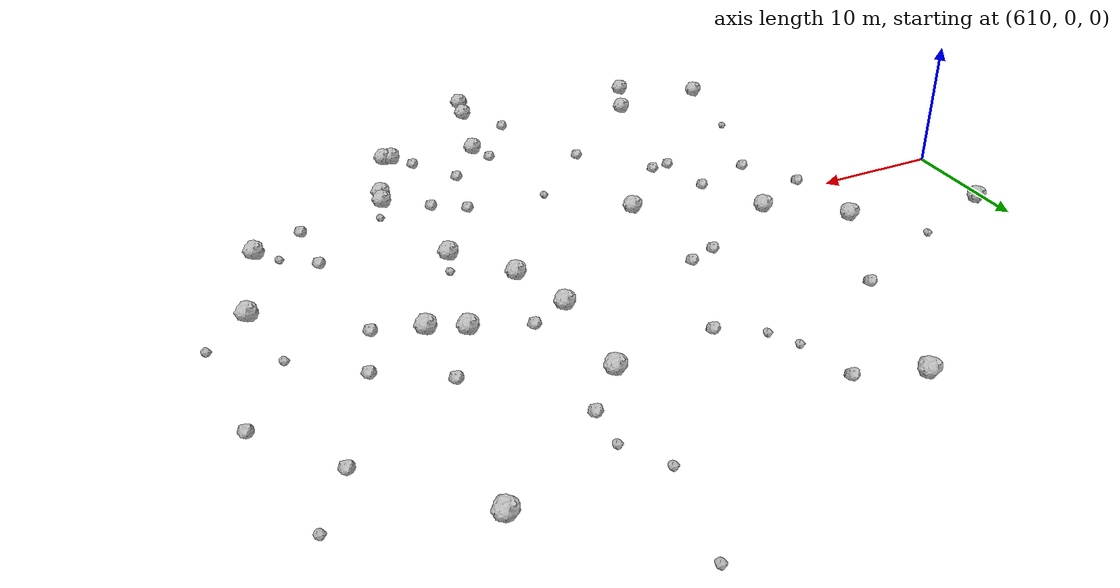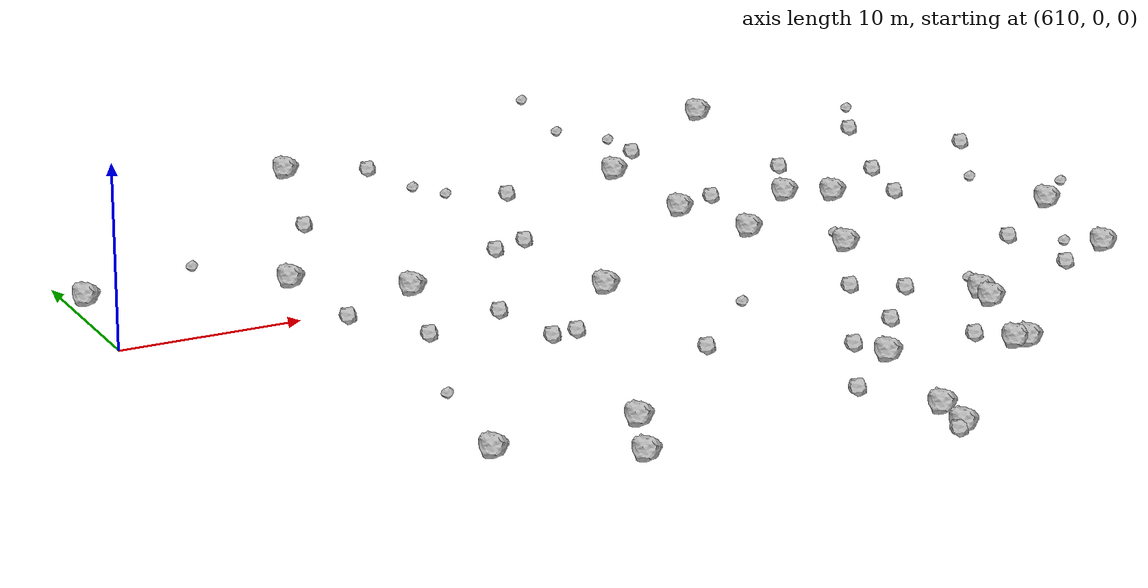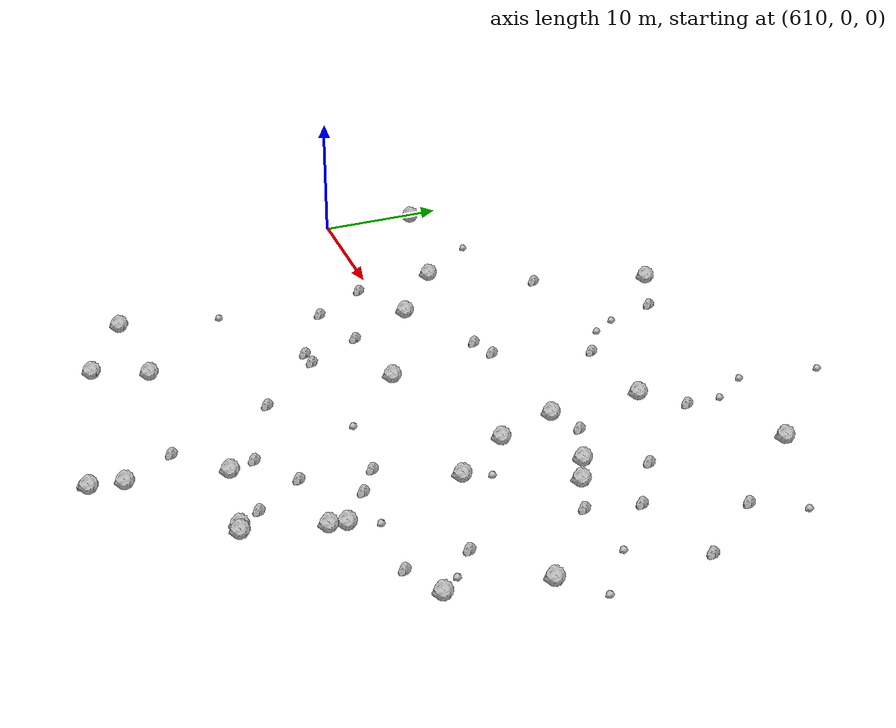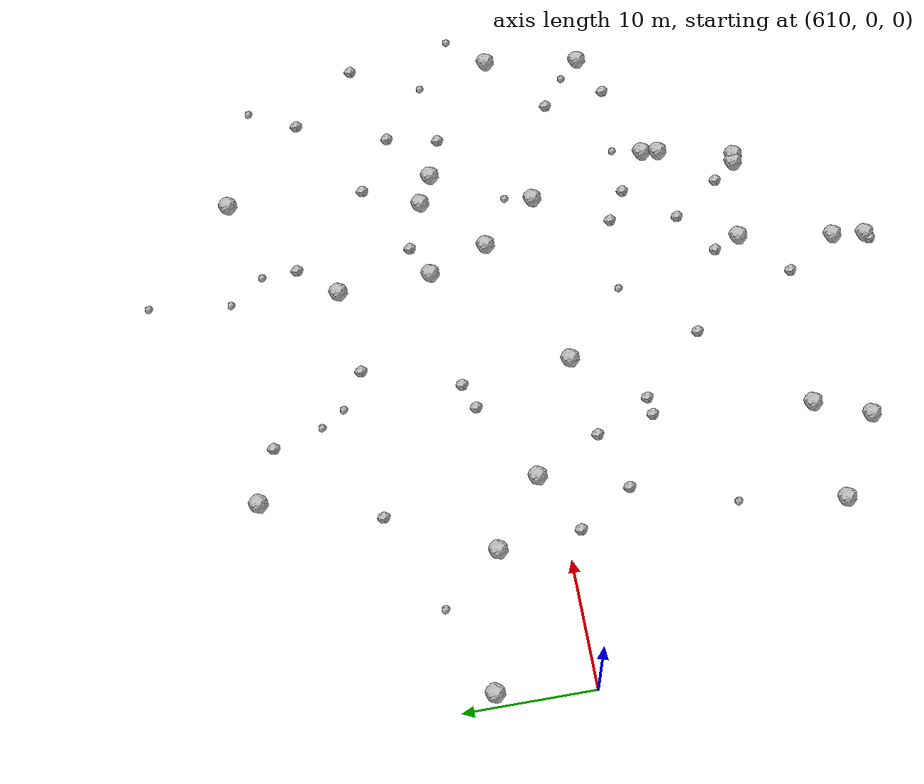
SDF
<sdf version="1.6">
 <world name="default">
  <include><uri>model://sun</uri></include>
  <model name="rock1_16_3">
   <include><uri>model://rock1</uri><pose>611.0188550802909 7.372932741155779 0.5 0 0 0</pose></include>
  </model>
  <model name="rock1_16_4">
   <include><uri>model://rock1</uri><pose>621.104017370537 -21.195809433902095 0.5 0 0 0</pose></include>
  </model>
  <model name="rock1_16_5">
   <include><uri>model://rock1</uri><pose>653.4046185525685 -13.655128765167689 0.5 0 0 0</pose></include>
  </model>
  <model name="rock1_16_6">
   <include><uri>model://rock1</uri><pose>651.3128370229997 -19.4929968290278 0.5 0 0 0</pose></include>
  </model>
  <model name="rock1_16_7">
   <include><uri>model://rock1</uri><pose>663.385555010819 -8.879742776792035 0.5 0 0 0</pose></include>
  </model>
  <model name="rock1_16_8">
   <include><uri>model://rock1</uri><pose>653.5849211186852 -12.35668051779231 0.5 0 0 0</pose></include>
  </model>
  <model name="rock1_16_9">
   <include><uri>model://rock1</uri><pose>645.531607840389 6.421609814988969 0.5 0 0 0</pose></include>
  </model>
  <model name="rock1_16_10">
   <include><uri>model://rock1</uri><pose>636.2062125508951 -3.0254964081259708 0.5 0 0 0</pose></include>
  </model>
  <model name="rock1_16_11">
   <include><uri>model://rock1</uri><pose>644.503779682121 -18.321896980757742 0.5 0 0 0</pose></include>
  </model>
  <model name="rock1_16_12">
   <include><uri>model://rock1</uri><pose>643.2626336028187 -25.74636766724753 0.5 0 0 0</pose></include>
  </model>
  <model name="rock1_16_13">
   <include><uri>model://rock1</uri><pose>627.4756169612667 -24.809736461389292 0.5 0 0 0</pose></include>
  </model>
  <model name="rock1_16_14">
   <include><uri>model://rock1</uri><pose>651.9804200522717 -19.640057466441682 0.5 0 0 0</pose></include>
  </model>
  <model name="rock1_16_15">
   <include><uri>model://rock1</uri><pose>626.9830475911915 1.2705493306880982 0.5 0 0 0</pose></include>
  </model>
  <model name="rock1_16_16">
   <include><uri>model://rock1</uri><pose>629.2030297411137 -20.623864757152518 0.5 0 0 0</pose></include>
  </model>
  <model name="rock1_16_17">
   <include><uri>model://rock1</uri><pose>628.5060619222281 22.225331602950206 0.5 0 0 0</pose></include>
  </model>
  <model name="rock1_16_18">
   <include><uri>model://rock1</uri><pose>654.4358683690555 5.0322587498975935 0.5 0 0 0</pose></include>
  </model>
  <model name="rock1_16_19">
   <include><uri>model://rock1</uri><pose>664.5284700867699 -1.3250262020061996 0.5 0 0 0</pose></include>
  </model>
  <model name="rock1_16_20">
   <include><uri>model://rock1</uri><pose>647.3077736800794 1.6804340712755526 0.5 0 0 0</pose></include>
  </model>
  <model name="rock1_16_21">
   <include><uri>model://rock1</uri><pose>642.9340660403866 -28.310526652170946 0.5 0 0 0</pose></include>
  </model>
  <model name="rock1_16_22">
   <include><uri>model://rock1</uri><pose>650.8589512465257 -2.765142153443886 0.5 0 0 0</pose></include>
  </model>
  <model name="rock1_16_23">
   <include><uri>model://rock1</uri><pose>654.5382118474469 21.469028244517446 0.5 0 0 0</pose></include>
  </model>
  <model name="rock1_16_24">
   <include><uri>model://rock1</uri><pose>652.0151037980455 6.20314245012392 0.5 0 0 0</pose></include>
  </model>
  <model name="rock1_16_25">
   <include><uri>model://rock1</uri><pose>621.7037739124708 5.229853159601156 0.5 0 0 0</pose></include>
  </model>
  <model name="rock1_16_26">
   <include><uri>model://rock1</uri><pose>645.1769837575567 13.824647036544889 0.5 0 0 0</pose></include>
  </model>
  <model name="rock2_16_0">
   <include><uri>model://rock2</uri><pose>640.7180077322662 -21.71708410691246 0.3 0 0 0</pose></include>
  </model>
  <model name="rock2_16_1">
   <include><uri>model://rock2</uri><pose>648.0689587641987 7.661069211828853 0.3 0 0 0</pose></include>
  </model>
  <model name="rock2_16_2">
   <include><uri>model://rock2</uri><pose>643.6122946768128 -16.251191453584028 0.3 0 0 0</pose></include>
  </model>
  <model name="rock2_16_3">
   <include><uri>model://rock2</uri><pose>647.1294761137885 -13.91332496300042 0.3 0 0 0</pose></include>
  </model>
  <model name="rock2_16_4">
   <include><uri>model://rock2</uri><pose>635.5117143081885 5.580281312830458 0.3 0 0 0</pose></include>
  </model>
  <model name="rock2_16_5">
   <include><uri>model://rock2</uri><pose>624.8673864857931 -5.375922072374713 0.3 0 0 0</pose></include>
  </model>
  <model name="rock2_16_6">
   <include><uri>model://rock2</uri><pose>636.7367384423457 -13.272743925505488 0.3 0 0 0</pose></include>
  </model>
  <model name="rock2_16_7">
   <include><uri>model://rock2</uri><pose>632.7868673600792 20.536277108276238 0.3 0 0 0</pose></include>
  </model>
  <model name="rock2_16_8">
   <include><uri>model://rock2</uri><pose>629.5395488479747 -3.8666757343244242 0.3 0 0 0</pose></include>
  </model>
  <model name="rock2_16_9">
   <include><uri>model://rock2</uri><pose>625.7647133386408 13.165615676193532 0.3 0 0 0</pose></include>
  </model>
  <model name="rock2_16_10">
   <include><uri>model://rock2</uri><pose>622.1846274217368 -1.1331488199879622 0.3 0 0 0</pose></include>
  </model>
  <model name="rock2_16_11">
   <include><uri>model://rock2</uri><pose>650.2474909068276 -10.070436198568196 0.3 0 0 0</pose></include>
  </model>
  <model name="rock2_16_12">
   <include><uri>model://rock2</uri><pose>665.6082713877568 9.938365816589538 0.3 0 0 0</pose></include>
  </model>
  <model name="rock2_16_13">
   <include><uri>model://rock2</uri><pose>659.9764481884047 -10.383076476036319 0.3 0 0 0</pose></include>
  </model>
  <model name="rock2_16_14">
   <include><uri>model://rock2</uri><pose>630.4341905169537 -8.342155483607296 0.3 0 0 0</pose></include>
  </model>
  <model name="rock2_16_15">
   <include><uri>model://rock2</uri><pose>657.6669416081883 3.858593836340127 0.3 0 0 0</pose></include>
  </model>
  <model name="rock2_16_16">
   <include><uri>model://rock2</uri><pose>631.881285945331 -8.215493360408253 0.3 0 0 0</pose></include>
  </model>
  <model name="rock2_16_17">
   <include><uri>model://rock2</uri><pose>647.7047747566577 16.76580145585796 0.3 0 0 0</pose></include>
  </model>
  <model name="rock2_16_18">
   <include><uri>model://rock2</uri><pose>659.3944330758537 -5.479491338889698 0.3 0 0 0</pose></include>
  </model>
  <model name="rock2_16_19">
   <include><uri>model://rock2</uri><pose>649.8928757135651 -17.689230618095117 0.3 0 0 0</pose></include>
  </model>
  <model name="rock2_16_20">
   <include><uri>model://rock2</uri><pose>653.9974172898812 10.620297907440076 0.3 0 0 0</pose></include>
  </model>
  <model name="rock2_16_21">
   <include><uri>model://rock2</uri><pose>638.030046094746 13.079439395210827 0.3 0 0 0</pose></include>
  </model>
  <model name="rock2_16_22">
   <include><uri>model://rock2</uri><pose>647.7573588146093 -8.555274285108357 0.3 0 0 0</pose></include>
  </model>
  <model name="rock2_16_23">
   <include><uri>model://rock2</uri><pose>658.5550195991349 7.912385065828914 0.3 0 0 0</pose></include>
  </model>
  <model name="rock2_16_24">
   <include><uri>model://rock2</uri><pose>661.1050552848333 15.054900322897467 0.3 0 0 0</pose></include>
  </model>
  <model name="rock2_16_25">
   <include><uri>model://rock2</uri><pose>642.4413647936616 -28.610010171850753 0.3 0 0 0</pose></include>
  </model>
  <model name="rock2_16_26">
   <include><uri>model://rock2</uri><pose>633.4298898295982 4.838701556020048 0.3 0 0 0</pose></include>
  </model>
  <model name="rock3_16_0">
   <include><uri>model://rock3</uri><pose>661.8376038039507 -7.313476918264655 0.2 0 0 0</pose></include>
  </model>
  <model name="rock3_16_1">
   <include><uri>model://rock3</uri><pose>651.2985312132098 -0.6194774486174524 0.2 0 0 0</pose></include>
  </model>
  <model name="rock3_16_2">
   <include><uri>model://rock3</uri><pose>647.5855718510584 19.546104750537253 0.2 0 0 0</pose></include>
  </model>
  <model name="rock3_16_3">
   <include><uri>model://rock3</uri><pose>617.8545631049608 9.793405476765301 0.2 0 0 0</pose></include>
  </model>
  <model name="rock3_16_4">
   <include><uri>model://rock3</uri><pose>654.1477155043219 -10.08222298792963 0.2 0 0 0</pose></include>
  </model>
  <model name="rock3_16_5">
   <include><uri>model://rock3</uri><pose>645.5779226869487 22.24884158470872 0.2 0 0 0</pose></include>
  </model>
  <model name="rock3_16_6">
   <include><uri>model://rock3</uri><pose>622.2950656901753 -13.21749452727775 0.2 0 0 0</pose></include>
  </model>
  <model name="rock3_16_7">
   <include><uri>model://rock3</uri><pose>662.9373717990551 4.439475043603416 0.2 0 0 0</pose></include>
  </model>
  <model name="rock3_16_8">
   <include><uri>model://rock3</uri><pose>633.8573529198908 16.66148015309625 0.2 0 0 0</pose></include>
  </model>
  <model name="rock3_16_9">
   <include><uri>model://rock3</uri><pose>663.0375098836296 18.76434590285765 0.2 0 0 0</pose></include>
  </model>
  <model name="rock3_16_10">
   <include><uri>model://rock3</uri><pose>667.1554446206314 1.5084928926201577 0.2 0 0 0</pose></include>
  </model>
  <model name="rock3_16_11">
   <include><uri>model://rock3</uri><pose>641.6148191503166 -8.02133671095881 0.2 0 0 0</pose></include>
  </model>
  <model name="rock3_16_12">
   <include><uri>model://rock3</uri><pose>646.3875463499005 28.66017284049824 0.2 0 0 0</pose></include>
  </model>
  <model name="rock3_16_13">
   <include><uri>model://rock3</uri><pose>635.0575190408493 14.824587077709246 0.2 0 0 0</pose></include>
  </model>
 </world>
</sdf>
